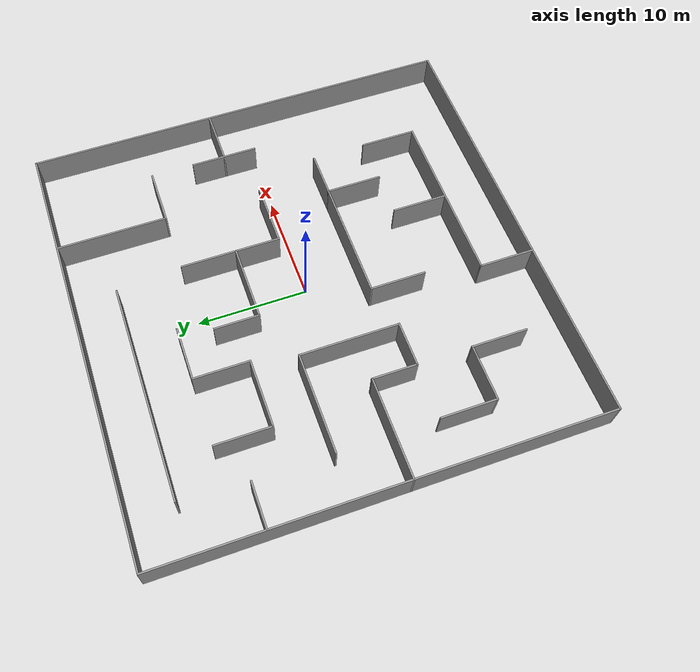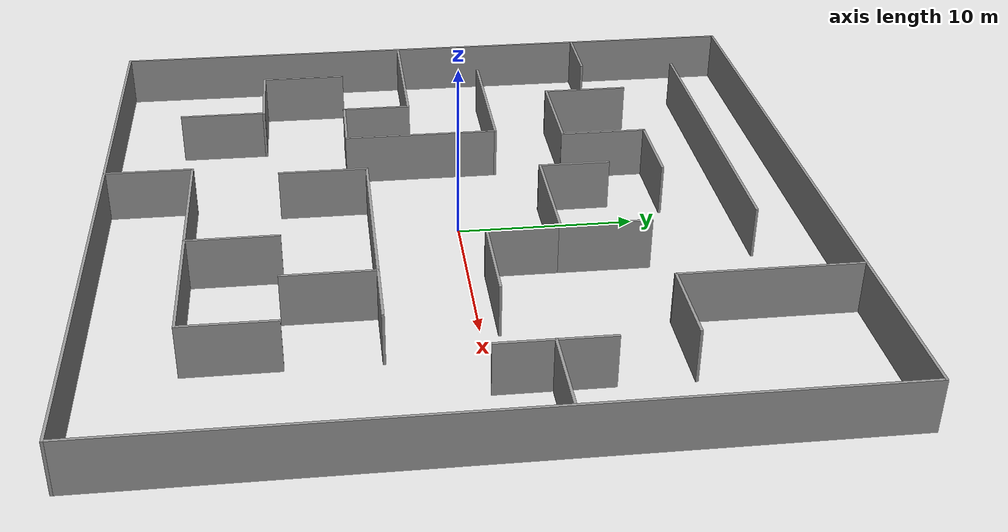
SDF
<?xml version='1.0'?>
<sdf version='1.7'>
  <model name='ipp_maze.world'>
    <pose>0 0 0 0 -0 0</pose>
    <link name='Wall_12'>
      <collision name='Wall_12_Collision'>
        <geometry>
          <box>
            <size>40.15 0.15 3.0</size>
          </box>
        </geometry>
        <pose>0 0 1.25 0 -0 0</pose>
      </collision>
      <visual name='Wall_12_Visual'>
        <pose>0 0 1.25 0 -0 0</pose>
        <geometry>
          <box>
            <size>40.15 0.15 3.0</size>
          </box>
        </geometry>
        <material>
          <script>
            <uri>file://media/materials/scripts/gazebo.material</uri>
            <name>Gazebo/Grey</name>
          </script>
          <ambient>1 1 1 1</ambient>
        </material>
        <meta>
          <layer>0</layer>
        </meta>
      </visual>
      <pose>-20 0 0 0 -0 1.5708</pose>
    </link>
    <link name='Wall_14'>
      <collision name='Wall_14_Collision'>
        <geometry>
          <box>
            <size>40.15 0.15 3.0</size>
          </box>
        </geometry>
        <pose>0 0 1.25 0 -0 0</pose>
      </collision>
      <visual name='Wall_14_Visual'>
        <pose>0 0 1.25 0 -0 0</pose>
        <geometry>
          <box>
            <size>40.15 0.15 3.0</size>
          </box>
        </geometry>
        <material>
          <script>
            <uri>file://media/materials/scripts/gazebo.material</uri>
            <name>Gazebo/Grey</name>
          </script>
          <ambient>1 1 1 1</ambient>
        </material>
        <meta>
          <layer>0</layer>
        </meta>
      </visual>
      <pose>0 20 0 0 -0 0</pose>
    </link>
    <link name='Wall_16'>
      <collision name='Wall_16_Collision'>
        <geometry>
          <box>
            <size>40 0.15 3.0</size>
          </box>
        </geometry>
        <pose>0 0 1.25 0 -0 0</pose>
      </collision>
      <visual name='Wall_16_Visual'>
        <pose>0 0 1.25 0 -0 0</pose>
        <geometry>
          <box>
            <size>40 0.15 3.0</size>
          </box>
        </geometry>
        <material>
          <script>
            <uri>file://media/materials/scripts/gazebo.material</uri>
            <name>Gazebo/Grey</name>
          </script>
          <ambient>1 1 1 1</ambient>
        </material>
        <meta>
          <layer>0</layer>
        </meta>
      </visual>
      <pose>20 0.075 0 0 -0 -1.5708</pose>
    </link>
    <link name='Wall_18'>
      <collision name='Wall_18_Collision'>
        <geometry>
          <box>
            <size>5.15 0.15 3.0</size>
          </box>
        </geometry>
        <pose>0 0 1.25 0 -0 0</pose>
      </collision>
      <visual name='Wall_18_Visual'>
        <pose>0 0 1.25 0 -0 0</pose>
        <geometry>
          <box>
            <size>5.15 0.15 3.0</size>
          </box>
        </geometry>
        <material>
          <script>
            <uri>file://media/materials/scripts/gazebo.material</uri>
            <name>Gazebo/Grey</name>
          </script>
          <ambient>1 1 1 1</ambient>
        </material>
        <meta>
          <layer>0</layer>
        </meta>
      </visual>
      <pose>-4 -17.5 0 0 -0 1.5708</pose>
    </link>
    <link name='Wall_21'>
      <collision name='Wall_21_Collision'>
        <geometry>
          <box>
            <size>16.15 0.15 3.0</size>
          </box>
        </geometry>
        <pose>0 0 1.25 0 -0 0</pose>
      </collision>
      <visual name='Wall_21_Visual'>
        <pose>0 0 1.25 0 -0 0</pose>
        <geometry>
          <box>
            <size>16.15 0.15 3.0</size>
          </box>
        </geometry>
        <material>
          <script>
            <uri>file://media/materials/scripts/gazebo.material</uri>
            <name>Gazebo/Grey</name>
          </script>
          <ambient>1 1 1 1</ambient>
        </material>
        <meta>
          <layer>0</layer>
        </meta>
      </visual>
      <pose>4 -15 0 0 -0 0</pose>
    </link>
    <link name='Wall_23'>
      <collision name='Wall_23_Collision'>
        <geometry>
          <box>
            <size>5.15 0.15 3.0</size>
          </box>
        </geometry>
        <pose>0 0 1.25 0 -0 0</pose>
      </collision>
      <visual name='Wall_23_Visual'>
        <pose>0 0 1.25 0 -0 0</pose>
        <geometry>
          <box>
            <size>5.15 0.15 3.0</size>
          </box>
        </geometry>
        <material>
          <script>
            <uri>file://media/materials/scripts/gazebo.material</uri>
            <name>Gazebo/Grey</name>
          </script>
          <ambient>1 1 1 1</ambient>
        </material>
        <meta>
          <layer>0</layer>
        </meta>
      </visual>
      <pose>12 -12.5 0 0 -0 1.5708</pose>
    </link>
    <link name='Wall_25'>
      <collision name='Wall_25_Collision'>
        <geometry>
          <box>
            <size>5.15 0.15 3.0</size>
          </box>
        </geometry>
        <pose>0 0 1.25 0 -0 0</pose>
      </collision>
      <visual name='Wall_25_Visual'>
        <pose>0 0 1.25 0 -0 0</pose>
        <geometry>
          <box>
            <size>5.15 0.15 3.0</size>
          </box>
        </geometry>
        <material>
          <script>
            <uri>file://media/materials/scripts/gazebo.material</uri>
            <name>Gazebo/Grey</name>
          </script>
          <ambient>1 1 1 1</ambient>
        </material>
        <meta>
          <layer>0</layer>
        </meta>
      </visual>
      <pose>17.5 3 0 0 -0 3.14159</pose>
    </link>
    <link name='Wall_29'>
      <collision name='Wall_29_Collision'>
        <geometry>
          <box>
            <size>6.15 0.15 3.0</size>
          </box>
        </geometry>
        <pose>0 0 1.25 0 -0 0</pose>
      </collision>
      <visual name='Wall_29_Visual'>
        <pose>0 0 1.25 0 -0 0</pose>
        <geometry>
          <box>
            <size>6.15 0.15 3.0</size>
          </box>
        </geometry>
        <material>
          <script>
            <uri>file://media/materials/scripts/gazebo.material</uri>
            <name>Gazebo/Grey</name>
          </script>
          <ambient>1 1 1 1</ambient>
        </material>
        <meta>
          <layer>0</layer>
        </meta>
      </visual>
      <pose>15 3 0 0 -0 -1.5708</pose>
    </link>
    <link name='Wall_31'>
      <collision name='Wall_31_Collision'>
        <geometry>
          <box>
            <size>5.15 0.15 3.0</size>
          </box>
        </geometry>
        <pose>0 0 1.25 0 -0 0</pose>
      </collision>
      <visual name='Wall_31_Visual'>
        <pose>0 0 1.25 0 -0 0</pose>
        <geometry>
          <box>
            <size>5.15 0.15 3.0</size>
          </box>
        </geometry>
        <material>
          <script>
            <uri>file://media/materials/scripts/gazebo.material</uri>
            <name>Gazebo/Grey</name>
          </script>
          <ambient>1 1 1 1</ambient>
        </material>
        <meta>
          <layer>0</layer>
        </meta>
      </visual>
      <pose>4 -12.5 0 0 -0 1.5708</pose>
    </link>
    <link name='Wall_33'>
      <collision name='Wall_33_Collision'>
        <geometry>
          <box>
            <size>5.15 0.15 3.0</size>
          </box>
        </geometry>
        <pose>0 0 1.25 0 -0 0</pose>
      </collision>
      <visual name='Wall_33_Visual'>
        <pose>0 0 1.25 0 -0 0</pose>
        <geometry>
          <box>
            <size>5.15 0.15 3.0</size>
          </box>
        </geometry>
        <material>
          <script>
            <uri>file://media/materials/scripts/gazebo.material</uri>
            <name>Gazebo/Grey</name>
          </script>
          <ambient>1 1 1 1</ambient>
        </material>
        <meta>
          <layer>0</layer>
        </meta>
      </visual>
      <pose>-11 -13.5 0 0 -0 1.5708</pose>
    </link>
    <link name='Wall_34'>
      <collision name='Wall_34_Collision'>
        <geometry>
          <box>
            <size>5.15 0.15 3.0</size>
          </box>
        </geometry>
        <pose>0 0 1.25 0 -0 0</pose>
      </collision>
      <visual name='Wall_34_Visual'>
        <pose>0 0 1.25 0 -0 0</pose>
        <geometry>
          <box>
            <size>5.15 0.15 3.0</size>
          </box>
        </geometry>
        <material>
          <script>
            <uri>file://media/materials/scripts/gazebo.material</uri>
            <name>Gazebo/Grey</name>
          </script>
          <ambient>1 1 1 1</ambient>
        </material>
        <meta>
          <layer>0</layer>
        </meta>
      </visual>
      <pose>-13.5 -11 0 0 -0 3.14159</pose>
    </link>
    <link name='Wall_35'>
      <collision name='Wall_35_Collision'>
        <geometry>
          <box>
            <size>5.15 0.15 3.0</size>
          </box>
        </geometry>
        <pose>0 0 1.25 0 -0 0</pose>
      </collision>
      <visual name='Wall_35_Visual'>
        <pose>0 0 1.25 0 -0 0</pose>
        <geometry>
          <box>
            <size>5.15 0.15 3.0</size>
          </box>
        </geometry>
        <material>
          <script>
            <uri>file://media/materials/scripts/gazebo.material</uri>
            <name>Gazebo/Grey</name>
          </script>
          <ambient>1 1 1 1</ambient>
        </material>
        <meta>
          <layer>0</layer>
        </meta>
      </visual>
      <pose>-16 -8.5 0 0 -0 1.5708</pose>
    </link>
    <link name='Wall_37'>
      <collision name='Wall_37_Collision'>
        <geometry>
          <box>
            <size>9.15 0.15 3.0</size>
          </box>
        </geometry>
        <pose>0 0 1.25 0 -0 0</pose>
      </collision>
      <visual name='Wall_37_Visual'>
        <pose>0 0 1.25 0 -0 0</pose>
        <geometry>
          <box>
            <size>9.15 0.15 3.0</size>
          </box>
        </geometry>
        <material>
          <script>
            <uri>file://media/materials/scripts/gazebo.material</uri>
            <name>Gazebo/Grey</name>
          </script>
          <ambient>1 1 1 1</ambient>
        </material>
        <meta>
          <layer>0</layer>
        </meta>
      </visual>
      <pose>-15.5 -2 0 0 -0 0</pose>
    </link>
    <link name='Wall_40'>
      <collision name='Wall_40_Collision'>
        <geometry>
          <box>
            <size>4.15 0.15 3.0</size>
          </box>
        </geometry>
        <pose>0 0 1.25 0 -0 0</pose>
      </collision>
      <visual name='Wall_40_Visual'>
        <pose>0 0 1.25 0 -0 0</pose>
        <geometry>
          <box>
            <size>4.15 0.15 3.0</size>
          </box>
        </geometry>
        <material>
          <script>
            <uri>file://media/materials/scripts/gazebo.material</uri>
            <name>Gazebo/Grey</name>
          </script>
          <ambient>1 1 1 1</ambient>
        </material>
        <meta>
          <layer>0</layer>
        </meta>
      </visual>
      <pose>-11 -4 0 0 -0 -1.5708</pose>
    </link>
    <link name='Wall_43'>
      <collision name='Wall_43_Collision'>
        <geometry>
          <box>
            <size>4.15 0.15 3.0</size>
          </box>
        </geometry>
        <pose>0 0 1.25 0 -0 0</pose>
      </collision>
      <visual name='Wall_43_Visual'>
        <pose>0 0 1.25 0 -0 0</pose>
        <geometry>
          <box>
            <size>4.15 0.15 3.0</size>
          </box>
        </geometry>
        <material>
          <script>
            <uri>file://media/materials/scripts/gazebo.material</uri>
            <name>Gazebo/Grey</name>
          </script>
          <ambient>1 1 1 1</ambient>
        </material>
        <meta>
          <layer>0</layer>
        </meta>
      </visual>
      <pose>-9 -6 0 0 -0 0</pose>
    </link>
    <link name='Wall_45'>
      <collision name='Wall_45_Collision'>
        <geometry>
          <box>
            <size>9.15 0.15 3.0</size>
          </box>
        </geometry>
        <pose>0 0 1.25 0 -0 0</pose>
      </collision>
      <visual name='Wall_45_Visual'>
        <pose>0 0 1.25 0 -0 0</pose>
        <geometry>
          <box>
            <size>9.15 0.15 3.0</size>
          </box>
        </geometry>
        <material>
          <script>
            <uri>file://media/materials/scripts/gazebo.material</uri>
            <name>Gazebo/Grey</name>
          </script>
          <ambient>1 1 1 1</ambient>
        </material>
        <meta>
          <layer>0</layer>
        </meta>
      </visual>
      <pose>-7 -1.5 0 0 -0 1.5708</pose>
    </link>
    <link name='Wall_47'>
      <collision name='Wall_47_Collision'>
        <geometry>
          <box>
            <size>9.15 0.15 3.0</size>
          </box>
        </geometry>
        <pose>0 0 1.25 0 -0 0</pose>
      </collision>
      <visual name='Wall_47_Visual'>
        <pose>0 0 1.25 0 -0 0</pose>
        <geometry>
          <box>
            <size>9.15 0.15 3.0</size>
          </box>
        </geometry>
        <material>
          <script>
            <uri>file://media/materials/scripts/gazebo.material</uri>
            <name>Gazebo/Grey</name>
          </script>
          <ambient>1 1 1 1</ambient>
        </material>
        <meta>
          <layer>0</layer>
        </meta>
      </visual>
      <pose>-11.5 3 0 0 -0 3.14159</pose>
    </link>
    <link name='Wall_49'>
      <collision name='Wall_49_Collision'>
        <geometry>
          <box>
            <size>4.15 0.15 3.0</size>
          </box>
        </geometry>
        <pose>0 0 1.25 0 -0 0</pose>
      </collision>
      <visual name='Wall_49_Visual'>
        <pose>0 0 1.25 0 -0 0</pose>
        <geometry>
          <box>
            <size>4.15 0.15 3.0</size>
          </box>
        </geometry>
        <material>
          <script>
            <uri>file://media/materials/scripts/gazebo.material</uri>
            <name>Gazebo/Grey</name>
          </script>
          <ambient>1 1 1 1</ambient>
        </material>
        <meta>
          <layer>0</layer>
        </meta>
      </visual>
      <pose>-18 10 0 0 -0 0</pose>
    </link>
    <link name='Wall_51'>
      <collision name='Wall_51_Collision'>
        <geometry>
          <box>
            <size>19.768 0.15 3.0</size>
          </box>
        </geometry>
        <pose>0 0 1.25 0 -0 0</pose>
      </collision>
      <visual name='Wall_51_Visual'>
        <pose>0 0 1.25 0 -0 0</pose>
        <geometry>
          <box>
            <size>19.768 0.15 3.0</size>
          </box>
        </geometry>
        <material>
          <script>
            <uri>file://media/materials/scripts/gazebo.material</uri>
            <name>Gazebo/Grey</name>
          </script>
          <ambient>1 1 1 1</ambient>
        </material>
        <meta>
          <layer>0</layer>
        </meta>
      </visual>
      <pose>-5.809 16 0 0 -0 0</pose>
    </link>
    <link name='Wall_53'>
      <collision name='Wall_53_Collision'>
        <geometry>
          <box>
            <size>5.15 0.15 3.0</size>
          </box>
        </geometry>
        <pose>0 0 1.25 0 -0 0</pose>
      </collision>
      <visual name='Wall_53_Visual'>
        <pose>0 0 1.25 0 -0 0</pose>
        <geometry>
          <box>
            <size>5.15 0.15 3.0</size>
          </box>
        </geometry>
        <material>
          <script>
            <uri>file://media/materials/scripts/gazebo.material</uri>
            <name>Gazebo/Grey</name>
          </script>
          <ambient>1 1 1 1</ambient>
        </material>
        <meta>
          <layer>0</layer>
        </meta>
      </visual>
      <pose>-12.268 9.5 0 0 -0 -1.5708</pose>
    </link>
    <link name='Wall_54'>
      <collision name='Wall_54_Collision'>
        <geometry>
          <box>
            <size>6.25 0.15 3.0</size>
          </box>
        </geometry>
        <pose>0 0 1.25 0 -0 0</pose>
      </collision>
      <visual name='Wall_54_Visual'>
        <pose>0 0 1.25 0 -0 0</pose>
        <geometry>
          <box>
            <size>6.25 0.15 3.0</size>
          </box>
        </geometry>
        <material>
          <script>
            <uri>file://media/materials/scripts/gazebo.material</uri>
            <name>Gazebo/Grey</name>
          </script>
          <ambient>1 1 1 1</ambient>
        </material>
        <meta>
          <layer>0</layer>
        </meta>
      </visual>
      <pose>-9.218 7 0 0 -0 0</pose>
    </link>
    <link name='Wall_55'>
      <collision name='Wall_55_Collision'>
        <geometry>
          <box>
            <size>5.15 0.15 3.0</size>
          </box>
        </geometry>
        <pose>0 0 1.25 0 -0 0</pose>
      </collision>
      <visual name='Wall_55_Visual'>
        <pose>0 0 1.25 0 -0 0</pose>
        <geometry>
          <box>
            <size>5.15 0.15 3.0</size>
          </box>
        </geometry>
        <material>
          <script>
            <uri>file://media/materials/scripts/gazebo.material</uri>
            <name>Gazebo/Grey</name>
          </script>
          <ambient>1 1 1 1</ambient>
        </material>
        <meta>
          <layer>0</layer>
        </meta>
      </visual>
      <pose>-6.168 9.5 0 0 -0 1.5708</pose>
    </link>
    <link name='Wall_56'>
      <collision name='Wall_56_Collision'>
        <geometry>
          <box>
            <size>5 0.15 3.0</size>
          </box>
        </geometry>
        <pose>0 0 1.25 0 -0 0</pose>
      </collision>
      <visual name='Wall_56_Visual'>
        <pose>0 0 1.25 0 -0 0</pose>
        <geometry>
          <box>
            <size>5 0.15 3.0</size>
          </box>
        </geometry>
        <material>
          <script>
            <uri>file://media/materials/scripts/gazebo.material</uri>
            <name>Gazebo/Grey</name>
          </script>
          <ambient>1 1 1 1</ambient>
        </material>
        <meta>
          <layer>0</layer>
        </meta>
      </visual>
      <pose>-3.743 12 0 0 -0 0</pose>
    </link>
    <link name='Wall_58'>
      <collision name='Wall_58_Collision'>
        <geometry>
          <box>
            <size>4.15 0.15 3.0</size>
          </box>
        </geometry>
        <pose>0 0 1.25 0 -0 0</pose>
      </collision>
      <visual name='Wall_58_Visual'>
        <pose>0 0 1.25 0 -0 0</pose>
        <geometry>
          <box>
            <size>4.15 0.15 3.0</size>
          </box>
        </geometry>
        <material>
          <script>
            <uri>file://media/materials/scripts/gazebo.material</uri>
            <name>Gazebo/Grey</name>
          </script>
          <ambient>1 1 1 1</ambient>
        </material>
        <meta>
          <layer>0</layer>
        </meta>
      </visual>
      <pose>-2.312 7 0 0 -0 -1.5708</pose>
    </link>
    <link name='Wall_59'>
      <collision name='Wall_59_Collision'>
        <geometry>
          <box>
            <size>7 0.15 3.0</size>
          </box>
        </geometry>
        <pose>0 0 1.25 0 -0 0</pose>
      </collision>
      <visual name='Wall_59_Visual'>
        <pose>0 0 1.25 0 -0 0</pose>
        <geometry>
          <box>
            <size>7 0.15 3.0</size>
          </box>
        </geometry>
        <material>
          <script>
            <uri>file://media/materials/scripts/gazebo.material</uri>
            <name>Gazebo/Grey</name>
          </script>
          <ambient>1 1 1 1</ambient>
        </material>
        <meta>
          <layer>0</layer>
        </meta>
      </visual>
      <pose>1.113 5 0 0 -0 0</pose>
    </link>
    <link name='Wall_60'>
      <collision name='Wall_60_Collision'>
        <geometry>
          <box>
            <size>4.15 0.15 3.0</size>
          </box>
        </geometry>
        <pose>0 0 1.25 0 -0 0</pose>
      </collision>
      <visual name='Wall_60_Visual'>
        <pose>0 0 1.25 0 -0 0</pose>
        <geometry>
          <box>
            <size>4.15 0.15 3.0</size>
          </box>
        </geometry>
        <material>
          <script>
            <uri>file://media/materials/scripts/gazebo.material</uri>
            <name>Gazebo/Grey</name>
          </script>
          <ambient>1 1 1 1</ambient>
        </material>
        <meta>
          <layer>0</layer>
        </meta>
      </visual>
      <pose>4.538 3 0 0 -0 -1.5708</pose>
    </link>
    <link name='Wall_61'>
      <collision name='Wall_61_Collision'>
        <geometry>
          <box>
            <size>5.75 0.15 3.0</size>
          </box>
        </geometry>
        <pose>0 0 1.25 0 -0 0</pose>
      </collision>
      <visual name='Wall_61_Visual'>
        <pose>0 0 1.25 0 -0 0</pose>
        <geometry>
          <box>
            <size>5.75 0.15 3.0</size>
          </box>
        </geometry>
        <material>
          <script>
            <uri>file://media/materials/scripts/gazebo.material</uri>
            <name>Gazebo/Grey</name>
          </script>
          <ambient>1 1 1 1</ambient>
        </material>
        <meta>
          <layer>0</layer>
        </meta>
      </visual>
      <pose>7.338 1 0 0 -0 0</pose>
    </link>
    <link name='Wall_63'>
      <collision name='Wall_63_Collision'>
        <geometry>
          <box>
            <size>5.15 0.15 3.0</size>
          </box>
        </geometry>
        <pose>0 0 1.25 0 -0 0</pose>
      </collision>
      <visual name='Wall_63_Visual'>
        <pose>0 0 1.25 0 -0 0</pose>
        <geometry>
          <box>
            <size>5.15 0.15 3.0</size>
          </box>
        </geometry>
        <material>
          <script>
            <uri>file://media/materials/scripts/gazebo.material</uri>
            <name>Gazebo/Grey</name>
          </script>
          <ambient>1 1 1 1</ambient>
        </material>
        <meta>
          <layer>0</layer>
        </meta>
      </visual>
      <pose>4.538 7.5 0 0 -0 1.5708</pose>
    </link>
    <link name='Wall_65'>
      <collision name='Wall_65_Collision'>
        <geometry>
          <box>
            <size>5.15 0.15 3.0</size>
          </box>
        </geometry>
        <pose>0 0 1.25 0 -0 0</pose>
      </collision>
      <visual name='Wall_65_Visual'>
        <pose>0 0 1.25 0 -0 0</pose>
        <geometry>
          <box>
            <size>5.15 0.15 3.0</size>
          </box>
        </geometry>
        <material>
          <script>
            <uri>file://media/materials/scripts/gazebo.material</uri>
            <name>Gazebo/Grey</name>
          </script>
          <ambient>1 1 1 1</ambient>
        </material>
        <meta>
          <layer>0</layer>
        </meta>
      </visual>
      <pose>12.5 10 0 0 -0 3.14159</pose>
    </link>
    <link name='Wall_66'>
      <collision name='Wall_66_Collision'>
        <geometry>
          <box>
            <size>10.15 0.15 3.0</size>
          </box>
        </geometry>
        <pose>0 0 1.25 0 -0 0</pose>
      </collision>
      <visual name='Wall_66_Visual'>
        <pose>0 0 1.25 0 -0 0</pose>
        <geometry>
          <box>
            <size>10.15 0.15 3.0</size>
          </box>
        </geometry>
        <material>
          <script>
            <uri>file://media/materials/scripts/gazebo.material</uri>
            <name>Gazebo/Grey</name>
          </script>
          <ambient>1 1 1 1</ambient>
        </material>
        <meta>
          <layer>0</layer>
        </meta>
      </visual>
      <pose>10 15 0 0 -0 1.5708</pose>
    </link>
    <link name='Wall_68'>
      <collision name='Wall_68_Collision'>
        <geometry>
          <box>
            <size>5.15 0.15 3.0</size>
          </box>
        </geometry>
        <pose>0 0 1.25 0 -0 0</pose>
      </collision>
      <visual name='Wall_68_Visual'>
        <pose>0 0 1.25 0 -0 0</pose>
        <geometry>
          <box>
            <size>5.15 0.15 3.0</size>
          </box>
        </geometry>
        <material>
          <script>
            <uri>file://media/materials/scripts/gazebo.material</uri>
            <name>Gazebo/Grey</name>
          </script>
          <ambient>1 1 1 1</ambient>
        </material>
        <meta>
          <layer>0</layer>
        </meta>
      </visual>
      <pose>8 -7.5 0 0 -0 1.5708</pose>
    </link>
    <link name='Wall_69'>
      <collision name='Wall_69_Collision'>
        <geometry>
          <box>
            <size>11.15 0.15 3.0</size>
          </box>
        </geometry>
        <pose>0 0 1.25 0 -0 0</pose>
      </collision>
      <visual name='Wall_69_Visual'>
        <pose>0 0 1.25 0 -0 0</pose>
        <geometry>
          <box>
            <size>11.15 0.15 3.0</size>
          </box>
        </geometry>
        <material>
          <script>
            <uri>file://media/materials/scripts/gazebo.material</uri>
            <name>Gazebo/Grey</name>
          </script>
          <ambient>1 1 1 1</ambient>
        </material>
        <meta>
          <layer>0</layer>
        </meta>
      </visual>
      <pose>2.5 -5 0 0 -0 3.14159</pose>
    </link>
    <link name='Wall_7'>
      <collision name='Wall_7_Collision'>
        <geometry>
          <box>
            <size>40.15 0.15 3.0</size>
          </box>
        </geometry>
        <pose>0 0 1.25 0 -0 0</pose>
      </collision>
      <visual name='Wall_7_Visual'>
        <pose>0 0 1.25 0 -0 0</pose>
        <geometry>
          <box>
            <size>40.15 0.15 3.0</size>
          </box>
        </geometry>
        <material>
          <script>
            <uri>file://media/materials/scripts/gazebo.material</uri>
            <name>Gazebo/Grey</name>
          </script>
          <ambient>1 1 1 1</ambient>
        </material>
        <meta>
          <layer>0</layer>
        </meta>
      </visual>
      <pose>0 -20 0 0 -0 0</pose>
    </link>
    <link name='Wall_70'>
      <collision name='Wall_70_Collision'>
        <geometry>
          <box>
            <size>5.15 0.15 3.0</size>
          </box>
        </geometry>
        <pose>0 0 1.25 0 -0 0</pose>
      </collision>
      <visual name='Wall_70_Visual'>
        <pose>0 0 1.25 0 -0 0</pose>
        <geometry>
          <box>
            <size>5.15 0.15 3.0</size>
          </box>
        </geometry>
        <material>
          <script>
            <uri>file://media/materials/scripts/gazebo.material</uri>
            <name>Gazebo/Grey</name>
          </script>
          <ambient>1 1 1 1</ambient>
        </material>
        <meta>
          <layer>0</layer>
        </meta>
      </visual>
      <pose>-3 -7.5 0 0 -0 -1.5708</pose>
    </link>
    <link name='Wall_72'>
      <collision name='Wall_72_Collision'>
        <geometry>
          <box>
            <size>4.127 0.15 3.0</size>
          </box>
        </geometry>
        <pose>0 0 1.25 0 -0 0</pose>
      </collision>
      <visual name='Wall_72_Visual'>
        <pose>0 0 1.25 0 -0 0</pose>
        <geometry>
          <box>
            <size>4.127 0.15 3.0</size>
          </box>
        </geometry>
        <material>
          <script>
            <uri>file://media/materials/scripts/gazebo.material</uri>
            <name>Gazebo/Grey</name>
          </script>
          <ambient>1 1 1 1</ambient>
        </material>
        <meta>
          <layer>0</layer>
        </meta>
      </visual>
      <pose>9.9885 -5 0 0 -0 0</pose>
    </link>
    <static>1</static>
  </model>
</sdf>
